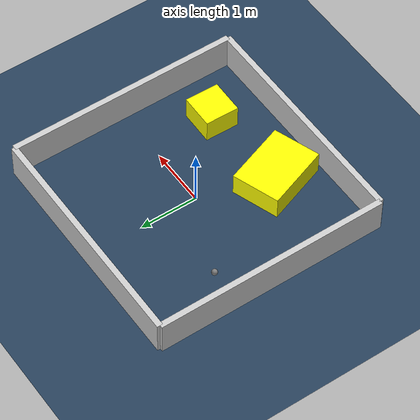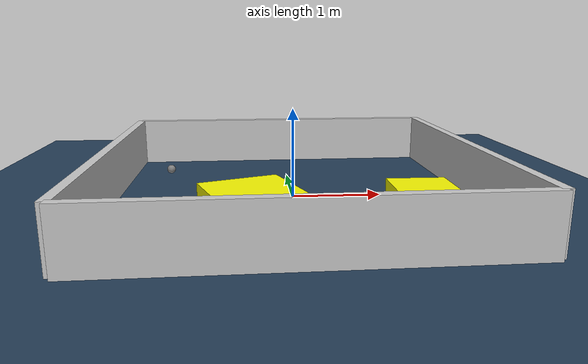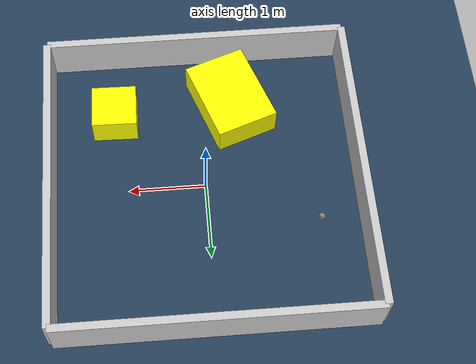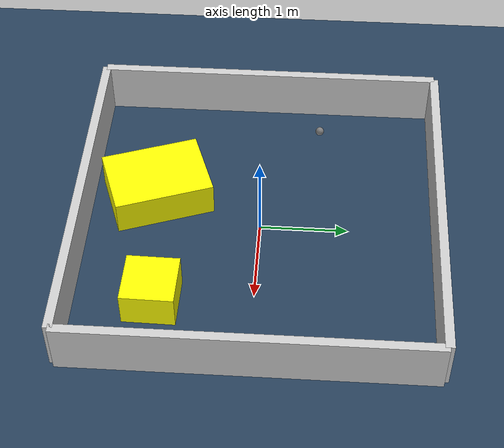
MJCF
<?xml version="1.0" ?>
<mujoco model="generated_environment">
  <option timestep="0.01" integrator="RK4" cone="elliptic"/>
  <default>
    <geom density="1"/>
  </default>
  <asset>
    <texture builtin="gradient" height="3072" rgb1="0.3 0.5 0.7" rgb2="0 0 0" type="skybox" width="512"/>
    <texture builtin="checker" height="300" mark="edge" markrgb="0.8 0.8 0.8" name="groundplane" rgb1="0.2 0.3 0.4" rgb2="0.1 0.2 0.3" type="2d" width="300"/>
    <material name="groundplane" reflectance="0.2" texrepeat="5 5" texture="groundplane" texuniform="true"/>
    <material name="robot" rgba="0.0 1.0 0.0 1"/>
  </asset>
  <worldbody>
    <light dir="0 0 -1" directional="true" pos="0 0 1.5"/>
    <geom condim="4" friction="1.0 0.005 0.001" material="groundplane" name="floor" size="0 0 0.05" type="plane"/>
    <body name="walls">
      <geom name="wall_1" condim="4" pos="-2.0 0.0 0.3" rgba="0.800000011920929 0.800000011920929 0.800000011920929 1.0" size="0.05 2.0 0.3" type="box"/>
      <geom name="wall_2" condim="4" pos="2.0 0.0 0.3" rgba="0.800000011920929 0.800000011920929 0.800000011920929 1.0" size="0.05 2.0 0.3" type="box"/>
      <geom name="wall_3" condim="4" pos="0.0 -2.0 0.3" rgba="0.800000011920929 0.800000011920929 0.800000011920929 1.0" size="2.0 0.05 0.3" type="box"/>
      <geom name="wall_4" condim="4" pos="0.0 2.0 0.3" rgba="0.800000011920929 0.800000011920929 0.800000011920929 1.0" size="2.0 0.05 0.3" type="box"/>
    </body>
    <body name="robot">
      <joint name="joint_x" type="slide" pos="0 0 0" axis="1 0 0"/>
      <joint name="joint_y" type="slide" pos="0 0 0" axis="0 1 0"/>
      <geom name="robot" type="sphere" pos="-1.4307651669419976 0.6423610344515365 0.2" size="0.05" mass="5." friction="1.0 0.005 0.0001" condim="4"/>
      <site name="sensor_ball"/>
    </body>
    <body name="obstacle_1_movable">
      <geom name="obstacle_1_movable" condim="4" pos="-0.42342753411467937 -1.2080547859638586 0.2" euler="0 0 109.62721356953506" friction="1.0 0.005 0.001" rgba="1 1 0 1" size="0.5628178209334873 0.41291078927598335 0.2" type="box" mass="0.1"/>
      <joint type="free"/>
    </body>
    <body name="obstacle_2_movable">
      <geom name="obstacle_2_movable" condim="4" pos="1.141403655100816 -1.0933751178925513 0.2" euler="0 0 178.91316911790716" friction="1.0 0.005 0.001" rgba="1 1 0 1" size="0.29499465740350556 0.29138037038817477 0.2" type="box" mass="0.1"/>
      <joint type="free"/>
    </body>
  </worldbody>
  <actuator>
    <motor name="actuator_x" joint="joint_x" gear="1" ctrlrange="-1 1"/>
    <motor name="actuator_y" joint="joint_y" gear="1" ctrlrange="-1 1"/>
  </actuator>
</mujoco>
